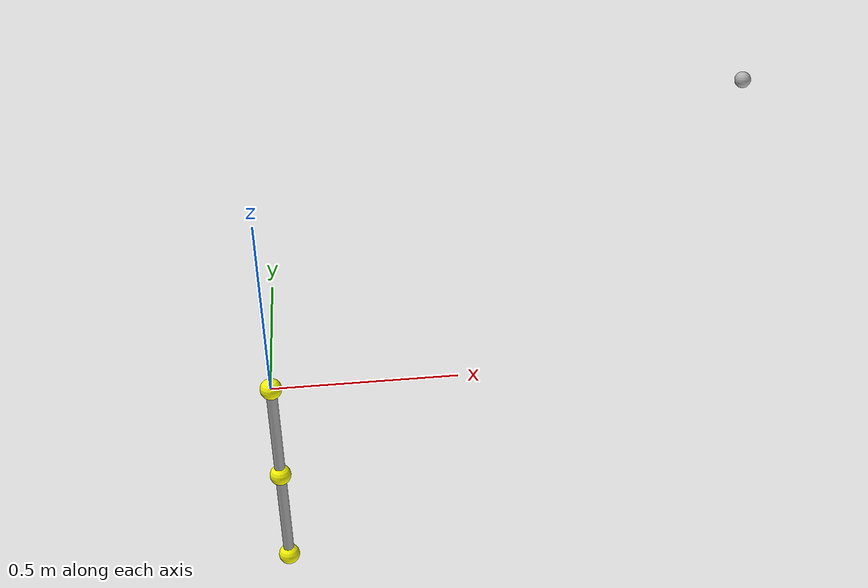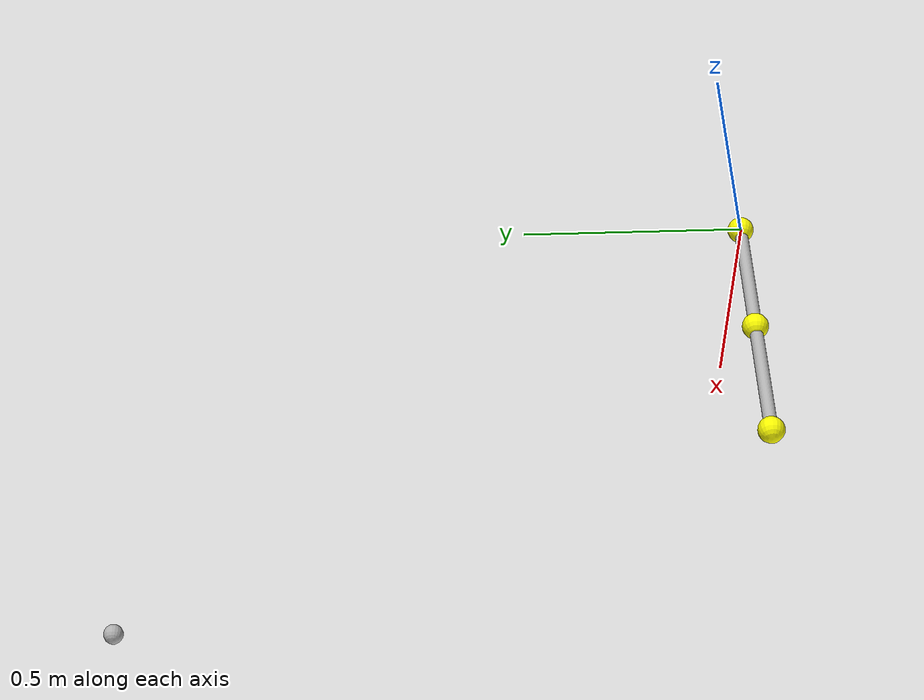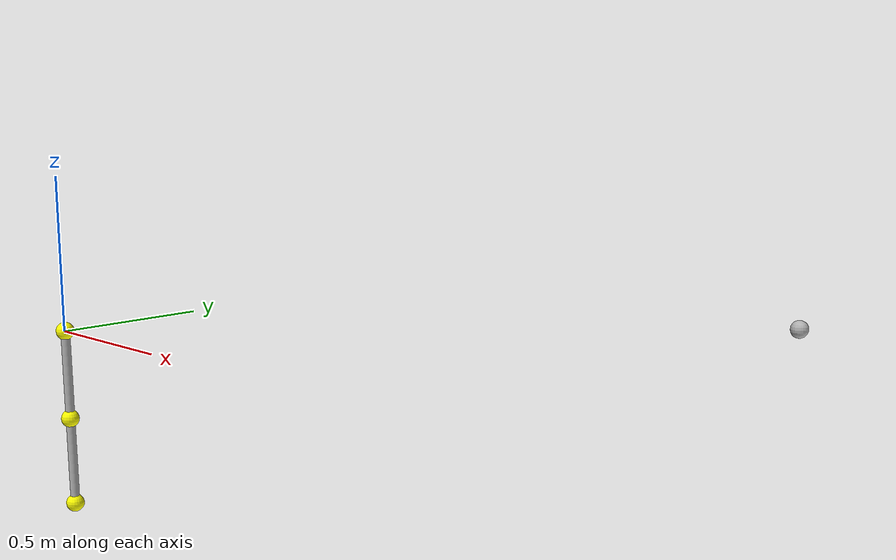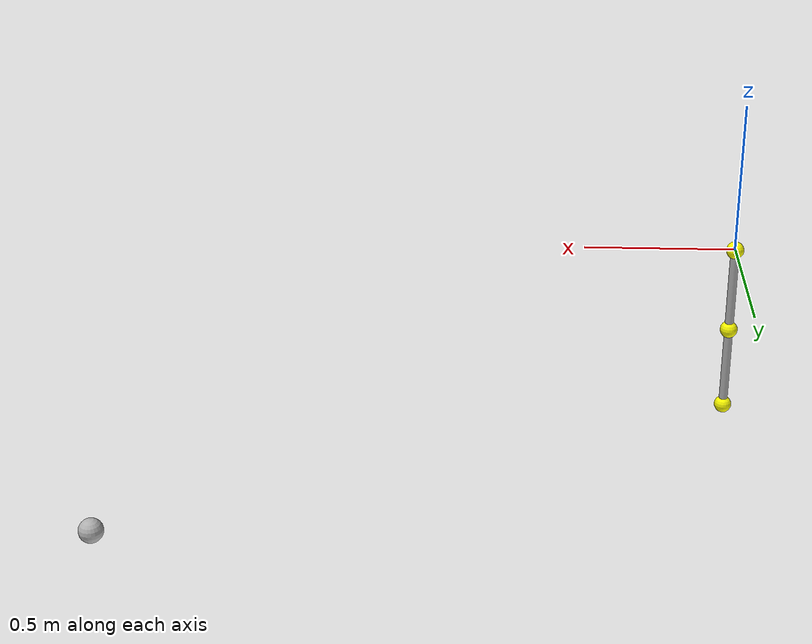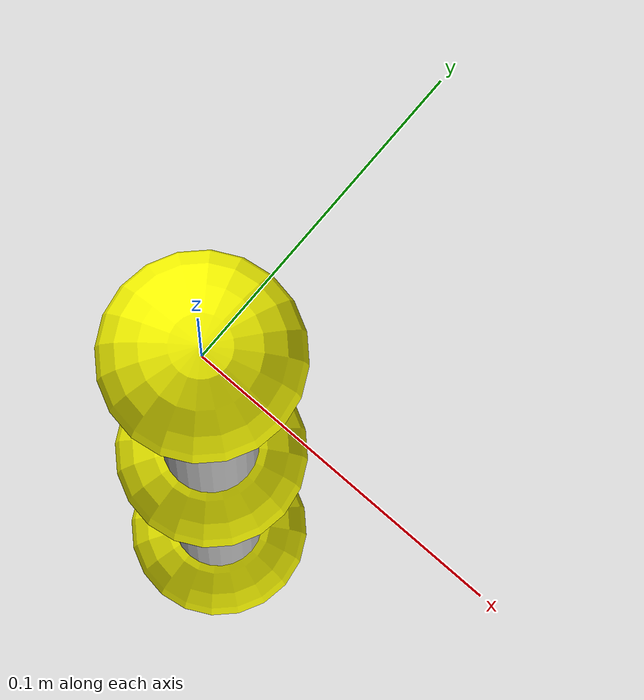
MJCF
<mujoco model="3D_UpperLimb">

  <compiler inertiafromgeom = "auto"
            angle 					= "radian" />

						<option  timestep  = '0.0001'
										iterations = '50'
										integrator = 'Euler'
										   gravity = "0 0 -9.81"
									   collision = 'all' >

							<flag energy = 'enable'/>

						</option>

  <asset>
    <!-- Texture of the surrounding sky box
         setting everything as white-ish color for better visualization -->

     <texture type		= "skybox"
              builtin = "checker"
              rgb1 		= ".1 .2 .3"
              rgb2 		= ".2 .3 .4"
              width	  = "200"
             height 	= "200"
               mark 	= "edge"/>

     <!-- Joint and Limb Color -->
     <material name = "JointColor"	   rgba = "1.0 1.0 0.0 1"/>
     <material name = "LimbColor" 	   rgba = "0.7 0.7 0.7 1"/>
		 <material name = "pointMassColor" rgba = "1.0 1.0 1.0 1.0"/>
     <material name = "RefMassColor"   rgba = "0.2 0.9 0.1 1.0"/>

  </asset>

  <worldbody>

    <body name='cameramover' mocap='true' pos='0 0 0'>
				<camera name='mycamera' pos='0.0 2.0 2.0' euler='1.5707 0 0'/>
  	</body>

		<body name="body_upper_arm" pos="0 0 0" euler="0 0 0">
			<site name='site_upper_arm_start' pos='0 0 0' />
			<inertial pos="0 0 -0.129" mass="1.595" diaginertia="0.011917 0.011937 0.001325" />
			 <joint name="joint_shoulder_flex_ext" ref="0" type="hinge" stiffness="0" pos = "0 0 0" axis = "0 -1 0" />
			 <joint name='joint_shoulder_add_abd' ref='0'  type='hinge' stiffness='0' pos='0 0 0' axis='-1 0 0' />
			 <joint name='joint_shoulder_med_lat' ref='0'  type='hinge' stiffness='0' pos='0 0 0' axis=' 0 0 1' />
			 <geom name="geom_shoulder" type="sphere" pos="0 0 0" material="JointColor" size="0.0294" mass="0" />
			 <geom type="cylinder" fromto="0 0 0 0 0 -0.294" material="LimbColor" mass="0" size="0.0147" />
			 <site name="site_upper_arm_COM" pos="0 0 -0.129" />
			 <site name='site_upper_arm_end' pos='0 0 -0.294' />

			 <!-- ================ FORE ARM START ================ -->
			 <body name="body_fore_arm" pos="0 0 -0.294" euler="0 0 0">
  	 			 <site name='site_fore_arm_start' pos='0 0 0' />
				 <joint name="joint_elbow" ref="0" type="hinge" stiffness="0" pos="0 0 0" axis="0 -1 0" />
				 <inertial pos="0 0 -0.112" mass="0.869" diaginertia="0.004765 0.004855 0.000472" />
				 <geom name="geom_elbow" type="sphere" pos="0 0 0" material="JointColor" size="0.0294" mass="0" />
			     <geom type="cylinder" fromto="0 0 0 0 0 -0.291" material="LimbColor" mass="0" size="0.0147" />
				 <site name="site_fore_arm_COM" pos="0 0 -0.112" />
				 <geom name="geom_EE" type="sphere" pos="0 0 -0.291" material="JointColor" size="0.0294" mass="0" />
        		 <site name='site_whip_COM' pos='0 0 -0.291' />
        		 <site name='site_fore_arm_end' pos='0 0 -0.291' />
			</body>
			<!-- ============ FORE ARM END   =============== -->

		</body>

	<geom name='geom_target' type='sphere' pos='1.69352 1.69352 0.0' material='LimbColor' mass='0' size='0.03'/>

  </worldbody>

	<actuator>

	      <motor joint="joint_shoulder_flex_ext" name="motor_shoulder_flex_ext" forcelimited="false" />
	      <motor joint="joint_shoulder_add_abd"  name="motor_shoulder_add_abd"  forcelimited="false" />
	      <motor joint="joint_shoulder_med_lat"  name="motor_shoulder_med_lat"  forcelimited="false" />
	      <motor joint="joint_elbow" 			 name="motor_elbow" 						forcelimited="false" />

  </actuator>

</mujoco>
